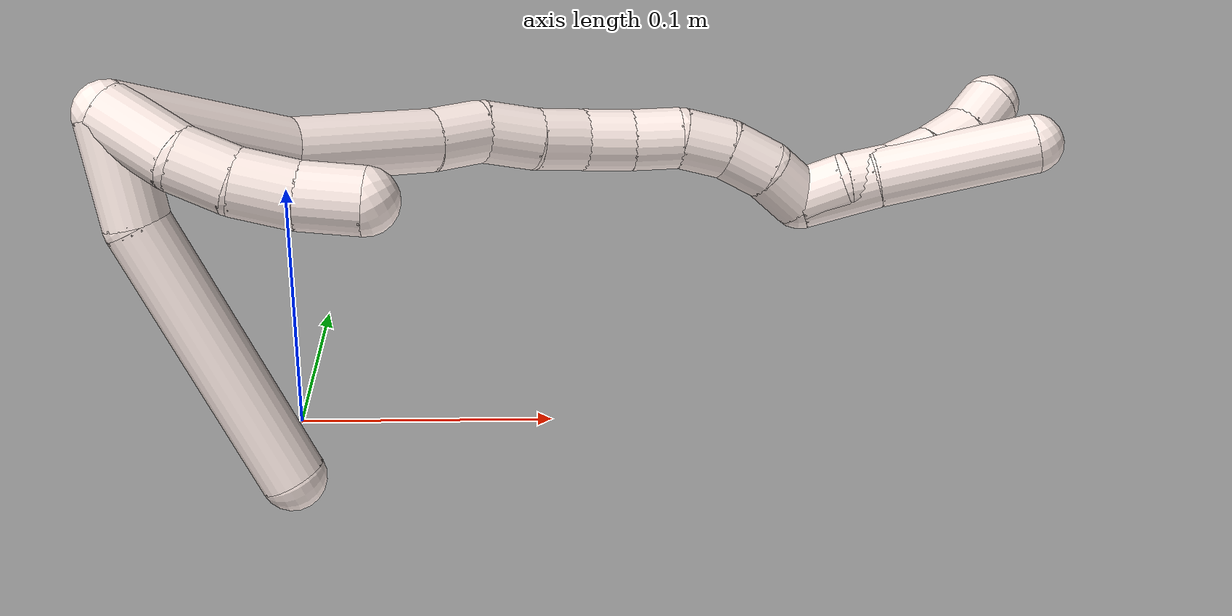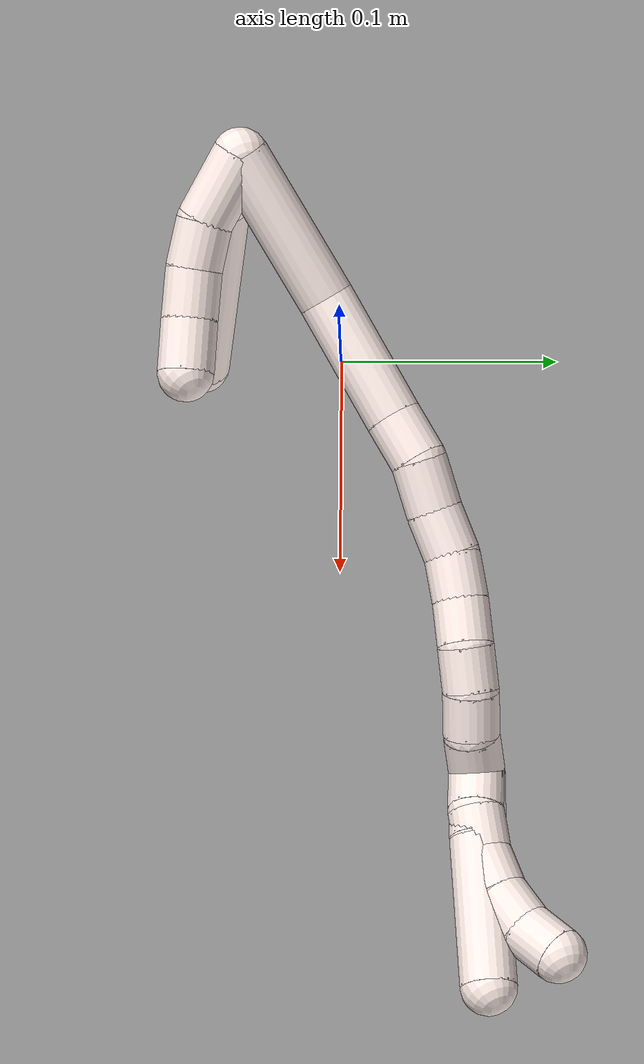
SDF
<sdf version="1.7">
 <world name="default">
  <model name="11">
   <static>0</static>
   <link name="11">
    <collision name="collision-cylinder-e_1_2_8">
     <pose>0.017763 -0.007959 -0.005331 2.16099 1.07618 1.68223</pose>
     <geometry><cylinder><radius>0.0125</radius><length>0.040364</length></cylinder></geometry>
     <surface>
      <friction><ode><mu>1.16</mu><mu2>1.16</mu2><slip1>0</slip1><slip2>0</slip2></ode></friction>
      <contact><ode><kp>1e+06</kp><kd>1</kd><max_vel>0</max_vel><min_depth>0.001</min_depth></ode></contact>
     </surface>
    </collision>
    <visual name="visual-cylinder-e_1_2_8">
     <pose>0.017763 -0.007959 -0.005331 2.16099 1.07618 1.68223</pose>
     <geometry><cylinder><radius>0.0125</radius><length>0.040364</length></cylinder></geometry>
     <material><ambient>1 0.933333 0.909804 1</ambient></material>
    </visual>
    <collision name="collision-cylinder-e_2_8_6">
     <pose>0.085655 -0.038087 -0.009805 1.53211 1.15416 1.11906</pose>
     <geometry><cylinder><radius>0.0125</radius><length>0.109636</length></cylinder></geometry>
     <surface>
      <friction><ode><mu>1.16</mu><mu2>1.16</mu2><slip1>0</slip1><slip2>0</slip2></ode></friction>
      <contact><ode><kp>1e+06</kp><kd>1</kd><max_vel>0</max_vel><min_depth>0.001</min_depth></ode></contact>
     </surface>
    </collision>
    <visual name="visual-cylinder-e_2_8_6">
     <pose>0.085655 -0.038087 -0.009805 1.53211 1.15416 1.11906</pose>
     <geometry><cylinder><radius>0.0125</radius><length>0.109636</length></cylinder></geometry>
     <material><ambient>1 0.933333 0.909804 1</ambient></material>
    </visual>
    <collision name="collision-cylinder-e_1_2_9">
     <pose>0.006811 -0.013523 0.00611 1.1464 0.430279 0.28026</pose>
     <geometry><cylinder><radius>0.0125</radius><length>0.032655</length></cylinder></geometry>
     <surface>
      <friction><ode><mu>1.16</mu><mu2>1.16</mu2><slip1>0</slip1><slip2>0</slip2></ode></friction>
      <contact><ode><kp>1e+06</kp><kd>1</kd><max_vel>0</max_vel><min_depth>0.001</min_depth></ode></contact>
     </surface>
    </collision>
    <visual name="visual-cylinder-e_1_2_9">
     <pose>0.006811 -0.013523 0.00611 1.1464 0.430279 0.28026</pose>
     <geometry><cylinder><radius>0.0125</radius><length>0.032655</length></cylinder></geometry>
     <material><ambient>1 0.933333 0.909804 1</ambient></material>
    </visual>
    <collision name="collision-cylinder-e_2_9_10">
     <pose>0.019041 -0.033922 0.018323 0.845014 0.532701 0.244103</pose>
     <geometry><cylinder><radius>0.0125</radius><length>0.021345</length></cylinder></geometry>
     <surface>
      <friction><ode><mu>1.16</mu><mu2>1.16</mu2><slip1>0</slip1><slip2>0</slip2></ode></friction>
      <contact><ode><kp>1e+06</kp><kd>1</kd><max_vel>0</max_vel><min_depth>0.001</min_depth></ode></contact>
     </surface>
    </collision>
    <visual name="visual-cylinder-e_2_9_10">
     <pose>0.019041 -0.033922 0.018323 0.845014 0.532701 0.244103</pose>
     <geometry><cylinder><radius>0.0125</radius><length>0.021345</length></cylinder></geometry>
     <material><ambient>1 0.933333 0.909804 1</ambient></material>
    </visual>
    <collision name="collision-cylinder-e_3_10_11">
     <pose>0.029522 -0.046827 0.03241 0.646667 0.468228 0.159492</pose>
     <geometry><cylinder><radius>0.0125</radius><length>0.022425</length></cylinder></geometry>
     <surface>
      <friction><ode><mu>1.16</mu><mu2>1.16</mu2><slip1>0</slip1><slip2>0</slip2></ode></friction>
      <contact><ode><kp>1e+06</kp><kd>1</kd><max_vel>0</max_vel><min_depth>0.001</min_depth></ode></contact>
     </surface>
    </collision>
    <visual name="visual-cylinder-e_3_10_11">
     <pose>0.029522 -0.046827 0.03241 0.646667 0.468228 0.159492</pose>
     <geometry><cylinder><radius>0.0125</radius><length>0.022425</length></cylinder></geometry>
     <material><ambient>1 0.933333 0.909804 1</ambient></material>
    </visual>
    <collision name="collision-cylinder-e_4_11_5">
     <pose>0.038595 -0.058862 0.049711 0.572611 0.347372 0.103213</pose>
     <geometry><cylinder><radius>0.0125</radius><length>0.023576</length></cylinder></geometry>
     <surface>
      <friction><ode><mu>1.16</mu><mu2>1.16</mu2><slip1>0</slip1><slip2>0</slip2></ode></friction>
      <contact><ode><kp>1e+06</kp><kd>1</kd><max_vel>0</max_vel><min_depth>0.001</min_depth></ode></contact>
     </surface>
    </collision>
    <visual name="visual-cylinder-e_4_11_5">
     <pose>0.038595 -0.058862 0.049711 0.572611 0.347372 0.103213</pose>
     <geometry><cylinder><radius>0.0125</radius><length>0.023576</length></cylinder></geometry>
     <material><ambient>1 0.933333 0.909804 1</ambient></material>
    </visual>
    <collision name="collision-cylinder-e_1_2_12">
     <pose>0.025959 0.002213 0.025703 -0.085897 0.788501 -0.035754</pose>
     <geometry><cylinder><radius>0.0125</radius><length>0.073197</length></cylinder></geometry>
     <surface>
      <friction><ode><mu>1.16</mu><mu2>1.16</mu2><slip1>0</slip1><slip2>0</slip2></ode></friction>
      <contact><ode><kp>1e+06</kp><kd>1</kd><max_vel>0</max_vel><min_depth>0.001</min_depth></ode></contact>
     </surface>
    </collision>
    <visual name="visual-cylinder-e_1_2_12">
     <pose>0.025959 0.002213 0.025703 -0.085897 0.788501 -0.035754</pose>
     <geometry><cylinder><radius>0.0125</radius><length>0.073197</length></cylinder></geometry>
     <material><ambient>1 0.933333 0.909804 1</ambient></material>
    </visual>
    <collision name="collision-cylinder-e_2_12_13">
     <pose>0.066793 0.005564 0.07754 -0.043499 0.51705 -0.011505</pose>
     <geometry><cylinder><radius>0.0125</radius><length>0.060183</length></cylinder></geometry>
     <surface>
      <friction><ode><mu>1.16</mu><mu2>1.16</mu2><slip1>0</slip1><slip2>0</slip2></ode></friction>
      <contact><ode><kp>1e+06</kp><kd>1</kd><max_vel>0</max_vel><min_depth>0.001</min_depth></ode></contact>
     </surface>
    </collision>
    <visual name="visual-cylinder-e_2_12_13">
     <pose>0.066793 0.005564 0.07754 -0.043499 0.51705 -0.011505</pose>
     <geometry><cylinder><radius>0.0125</radius><length>0.060183</length></cylinder></geometry>
     <material><ambient>1 0.933333 0.909804 1</ambient></material>
    </visual>
    <collision name="collision-cylinder-e_3_13_14">
     <pose>0.086079 0.007284 0.113744 -0.057731 0.412284 -0.012076</pose>
     <geometry><cylinder><radius>0.0125</radius><length>0.022019</length></cylinder></geometry>
     <surface>
      <friction><ode><mu>1.16</mu><mu2>1.16</mu2><slip1>0</slip1><slip2>0</slip2></ode></friction>
      <contact><ode><kp>1e+06</kp><kd>1</kd><max_vel>0</max_vel><min_depth>0.001</min_depth></ode></contact>
     </surface>
    </collision>
    <visual name="visual-cylinder-e_3_13_14">
     <pose>0.086079 0.007284 0.113744 -0.057731 0.412284 -0.012076</pose>
     <geometry><cylinder><radius>0.0125</radius><length>0.022019</length></cylinder></geometry>
     <material><ambient>1 0.933333 0.909804 1</ambient></material>
    </visual>
    <collision name="collision-cylinder-e_4_14_15">
     <pose>0.097283 0.00578 0.132992 0.223474 0.625129 0.072488</pose>
     <geometry><cylinder><radius>0.0125</radius><length>0.023213</length></cylinder></geometry>
     <surface>
      <friction><ode><mu>1.16</mu><mu2>1.16</mu2><slip1>0</slip1><slip2>0</slip2></ode></friction>
      <contact><ode><kp>1e+06</kp><kd>1</kd><max_vel>0</max_vel><min_depth>0.001</min_depth></ode></contact>
     </surface>
    </collision>
    <visual name="visual-cylinder-e_4_14_15">
     <pose>0.097283 0.00578 0.132992 0.223474 0.625129 0.072488</pose>
     <geometry><cylinder><radius>0.0125</radius><length>0.023213</length></cylinder></geometry>
     <material><ambient>1 0.933333 0.909804 1</ambient></material>
    </visual>
    <collision name="collision-cylinder-e_5_15_16">
     <pose>0.109376 0.002708 0.151044 0.110599 0.535711 0.030383</pose>
     <geometry><cylinder><radius>0.0125</radius><length>0.020767</length></cylinder></geometry>
     <surface>
      <friction><ode><mu>1.16</mu><mu2>1.16</mu2><slip1>0</slip1><slip2>0</slip2></ode></friction>
      <contact><ode><kp>1e+06</kp><kd>1</kd><max_vel>0</max_vel><min_depth>0.001</min_depth></ode></contact>
     </surface>
    </collision>
    <visual name="visual-cylinder-e_5_15_16">
     <pose>0.109376 0.002708 0.151044 0.110599 0.535711 0.030383</pose>
     <geometry><cylinder><radius>0.0125</radius><length>0.020767</length></cylinder></geometry>
     <material><ambient>1 0.933333 0.909804 1</ambient></material>
    </visual>
    <collision name="collision-cylinder-e_6_16_17">
     <pose>0.118849 -0.001254 0.168778 0.324099 0.419936 0.069651</pose>
     <geometry><cylinder><radius>0.0125</radius><length>0.020472</length></cylinder></geometry>
     <surface>
      <friction><ode><mu>1.16</mu><mu2>1.16</mu2><slip1>0</slip1><slip2>0</slip2></ode></friction>
      <contact><ode><kp>1e+06</kp><kd>1</kd><max_vel>0</max_vel><min_depth>0.001</min_depth></ode></contact>
     </surface>
    </collision>
    <visual name="visual-cylinder-e_6_16_17">
     <pose>0.118849 -0.001254 0.168778 0.324099 0.419936 0.069651</pose>
     <geometry><cylinder><radius>0.0125</radius><length>0.020472</length></cylinder></geometry>
     <material><ambient>1 0.933333 0.909804 1</ambient></material>
    </visual>
    <collision name="collision-cylinder-e_7_17_18">
     <pose>0.126215 -0.007721 0.18645 0.377208 0.324824 0.062531</pose>
     <geometry><cylinder><radius>0.0125</radius><length>0.020002</length></cylinder></geometry>
     <surface>
      <friction><ode><mu>1.16</mu><mu2>1.16</mu2><slip1>0</slip1><slip2>0</slip2></ode></friction>
      <contact><ode><kp>1e+06</kp><kd>1</kd><max_vel>0</max_vel><min_depth>0.001</min_depth></ode></contact>
     </surface>
    </collision>
    <visual name="visual-cylinder-e_7_17_18">
     <pose>0.126215 -0.007721 0.18645 0.377208 0.324824 0.062531</pose>
     <geometry><cylinder><radius>0.0125</radius><length>0.020002</length></cylinder></geometry>
     <material><ambient>1 0.933333 0.909804 1</ambient></material>
    </visual>
    <collision name="collision-cylinder-e_8_18_19">
     <pose>0.13515 -0.014782 0.202702 0.447422 0.608057 0.142529</pose>
     <geometry><cylinder><radius>0.0125</radius><length>0.020108</length></cylinder></geometry>
     <surface>
      <friction><ode><mu>1.16</mu><mu2>1.16</mu2><slip1>0</slip1><slip2>0</slip2></ode></friction>
      <contact><ode><kp>1e+06</kp><kd>1</kd><max_vel>0</max_vel><min_depth>0.001</min_depth></ode></contact>
     </surface>
    </collision>
    <visual name="visual-cylinder-e_8_18_19">
     <pose>0.13515 -0.014782 0.202702 0.447422 0.608057 0.142529</pose>
     <geometry><cylinder><radius>0.0125</radius><length>0.020108</length></cylinder></geometry>
     <material><ambient>1 0.933333 0.909804 1</ambient></material>
    </visual>
    <collision name="collision-cylinder-e_9_19_20">
     <pose>0.148032 -0.022591 0.215727 0.649178 0.794352 0.280442</pose>
     <geometry><cylinder><radius>0.0125</radius><length>0.020013</length></cylinder></geometry>
     <surface>
      <friction><ode><mu>1.16</mu><mu2>1.16</mu2><slip1>0</slip1><slip2>0</slip2></ode></friction>
      <contact><ode><kp>1e+06</kp><kd>1</kd><max_vel>0</max_vel><min_depth>0.001</min_depth></ode></contact>
     </surface>
    </collision>
    <visual name="visual-cylinder-e_9_19_20">
     <pose>0.148032 -0.022591 0.215727 0.649178 0.794352 0.280442</pose>
     <geometry><cylinder><radius>0.0125</radius><length>0.020013</length></cylinder></geometry>
     <material><ambient>1 0.933333 0.909804 1</ambient></material>
    </visual>
    <collision name="collision-cylinder-e_10_20_1">
     <pose>0.163994 -0.029601 0.22515 0.625223 1.0784 0.382062</pose>
     <geometry><cylinder><radius>0.0125</radius><length>0.020025</length></cylinder></geometry>
     <surface>
      <friction><ode><mu>1.16</mu><mu2>1.16</mu2><slip1>0</slip1><slip2>0</slip2></ode></friction>
      <contact><ode><kp>1e+06</kp><kd>1</kd><max_vel>0</max_vel><min_depth>0.001</min_depth></ode></contact>
     </surface>
    </collision>
    <visual name="visual-cylinder-e_10_20_1">
     <pose>0.163994 -0.029601 0.22515 0.625223 1.0784 0.382062</pose>
     <geometry><cylinder><radius>0.0125</radius><length>0.020025</length></cylinder></geometry>
     <material><ambient>1 0.933333 0.909804 1</ambient></material>
    </visual>
    <collision name="collision-cylinder-e_1_1_21">
     <pose>0.173284 -0.038854 0.243972 0.408366 0.028577 0.005918</pose>
     <geometry><cylinder><radius>0.0125</radius><length>0.032666</length></cylinder></geometry>
     <surface>
      <friction><ode><mu>1.16</mu><mu2>1.16</mu2><slip1>0</slip1><slip2>0</slip2></ode></friction>
      <contact><ode><kp>1e+06</kp><kd>1</kd><max_vel>0</max_vel><min_depth>0.001</min_depth></ode></contact>
     </surface>
    </collision>
    <visual name="visual-cylinder-e_1_1_21">
     <pose>0.173284 -0.038854 0.243972 0.408366 0.028577 0.005918</pose>
     <geometry><cylinder><radius>0.0125</radius><length>0.032666</length></cylinder></geometry>
     <material><ambient>1 0.933333 0.909804 1</ambient></material>
    </visual>
    <collision name="collision-cylinder-e_2_21_4">
     <pose>0.177883 -0.057578 0.290045 0.375068 0.123055 0.02338</pose>
     <geometry><cylinder><radius>0.0125</radius><length>0.067334</length></cylinder></geometry>
     <surface>
      <friction><ode><mu>1.16</mu><mu2>1.16</mu2><slip1>0</slip1><slip2>0</slip2></ode></friction>
      <contact><ode><kp>1e+06</kp><kd>1</kd><max_vel>0</max_vel><min_depth>0.001</min_depth></ode></contact>
     </surface>
    </collision>
    <visual name="visual-cylinder-e_2_21_4">
     <pose>0.177883 -0.057578 0.290045 0.375068 0.123055 0.02338</pose>
     <geometry><cylinder><radius>0.0125</radius><length>0.067334</length></cylinder></geometry>
     <material><ambient>1 0.933333 0.909804 1</ambient></material>
    </visual>
    <collision name="collision-cylinder-e_1_1_22">
     <pose>0.172088 -0.036429 0.238099 0.419016 -0.073003 -0.015529</pose>
     <geometry><cylinder><radius>0.0125</radius><length>0.02</length></cylinder></geometry>
     <surface>
      <friction><ode><mu>1.16</mu><mu2>1.16</mu2><slip1>0</slip1><slip2>0</slip2></ode></friction>
      <contact><ode><kp>1e+06</kp><kd>1</kd><max_vel>0</max_vel><min_depth>0.001</min_depth></ode></contact>
     </surface>
    </collision>
    <visual name="visual-cylinder-e_1_1_22">
     <pose>0.172088 -0.036429 0.238099 0.419016 -0.073003 -0.015529</pose>
     <geometry><cylinder><radius>0.0125</radius><length>0.02</length></cylinder></geometry>
     <material><ambient>1 0.933333 0.909804 1</ambient></material>
    </visual>
    <collision name="collision-cylinder-e_2_22_23">
     <pose>0.173294 -0.043293 0.25661 0.290162 0.194861 0.028559</pose>
     <geometry><cylinder><radius>0.0125</radius><length>0.02</length></cylinder></geometry>
     <surface>
      <friction><ode><mu>1.16</mu><mu2>1.16</mu2><slip1>0</slip1><slip2>0</slip2></ode></friction>
      <contact><ode><kp>1e+06</kp><kd>1</kd><max_vel>0</max_vel><min_depth>0.001</min_depth></ode></contact>
     </surface>
    </collision>
    <visual name="visual-cylinder-e_2_22_23">
     <pose>0.173294 -0.043293 0.25661 0.290162 0.194861 0.028559</pose>
     <geometry><cylinder><radius>0.0125</radius><length>0.02</length></cylinder></geometry>
     <material><ambient>1 0.933333 0.909804 1</ambient></material>
    </visual>
    <collision name="collision-cylinder-e_3_23_24">
     <pose>0.176291 -0.046821 0.275928 0.072569 0.10624 0.00386</pose>
     <geometry><cylinder><radius>0.0125</radius><length>0.02</length></cylinder></geometry>
     <surface>
      <friction><ode><mu>1.16</mu><mu2>1.16</mu2><slip1>0</slip1><slip2>0</slip2></ode></friction>
      <contact><ode><kp>1e+06</kp><kd>1</kd><max_vel>0</max_vel><min_depth>0.001</min_depth></ode></contact>
     </surface>
    </collision>
    <visual name="visual-cylinder-e_3_23_24">
     <pose>0.176291 -0.046821 0.275928 0.072569 0.10624 0.00386</pose>
     <geometry><cylinder><radius>0.0125</radius><length>0.02</length></cylinder></geometry>
     <material><ambient>1 0.933333 0.909804 1</ambient></material>
    </visual>
    <collision name="collision-cylinder-e_4_24_25">
     <pose>0.178592 -0.04594 0.295638 -0.162173 0.124388 -0.010121</pose>
     <geometry><cylinder><radius>0.0125</radius><length>0.02</length></cylinder></geometry>
     <surface>
      <friction><ode><mu>1.16</mu><mu2>1.16</mu2><slip1>0</slip1><slip2>0</slip2></ode></friction>
      <contact><ode><kp>1e+06</kp><kd>1</kd><max_vel>0</max_vel><min_depth>0.001</min_depth></ode></contact>
     </surface>
    </collision>
    <visual name="visual-cylinder-e_4_24_25">
     <pose>0.178592 -0.04594 0.295638 -0.162173 0.124388 -0.010121</pose>
     <geometry><cylinder><radius>0.0125</radius><length>0.02</length></cylinder></geometry>
     <material><ambient>1 0.933333 0.909804 1</ambient></material>
    </visual>
    <collision name="collision-cylinder-e_5_25_3">
     <pose>0.179592 -0.040513 0.314667 -0.392631 -0.024058 0.004785</pose>
     <geometry><cylinder><radius>0.0125</radius><length>0.02</length></cylinder></geometry>
     <surface>
      <friction><ode><mu>1.16</mu><mu2>1.16</mu2><slip1>0</slip1><slip2>0</slip2></ode></friction>
      <contact><ode><kp>1e+06</kp><kd>1</kd><max_vel>0</max_vel><min_depth>0.001</min_depth></ode></contact>
     </surface>
    </collision>
    <visual name="visual-cylinder-e_5_25_3">
     <pose>0.179592 -0.040513 0.314667 -0.392631 -0.024058 0.004785</pose>
     <geometry><cylinder><radius>0.0125</radius><length>0.02</length></cylinder></geometry>
     <material><ambient>1 0.933333 0.909804 1</ambient></material>
    </visual>
    <collision name="collision-sphere-3">
     <pose>0.179352 -0.036688 0.323903 0 -0 0</pose>
     <geometry><sphere><radius>0.0125</radius></sphere></geometry>
     <surface>
      <friction><ode><mu>1.16</mu><mu2>1.16</mu2><slip1>0</slip1><slip2>0</slip2></ode></friction>
      <contact><ode><kp>1e+06</kp><kd>1</kd><max_vel>0</max_vel><min_depth>0.001</min_depth></ode></contact>
     </surface>
    </collision>
    <visual name="visual-sphere-3">
     <pose>0.179352 -0.036688 0.323903 0 -0 0</pose>
     <geometry><sphere><radius>0.0125</radius></sphere></geometry>
     <material><ambient>1 0.933333 0.909804 1</ambient></material>
    </visual>
    <collision name="collision-sphere-25">
     <pose>0.179833 -0.044338 0.305431 0 -0 0</pose>
     <geometry><sphere><radius>0.0125</radius></sphere></geometry>
     <surface>
      <friction><ode><mu>1.16</mu><mu2>1.16</mu2><slip1>0</slip1><slip2>0</slip2></ode></friction>
      <contact><ode><kp>1e+06</kp><kd>1</kd><max_vel>0</max_vel><min_depth>0.001</min_depth></ode></contact>
     </surface>
    </collision>
    <visual name="visual-sphere-25">
     <pose>0.179833 -0.044338 0.305431 0 -0 0</pose>
     <geometry><sphere><radius>0.0125</radius></sphere></geometry>
     <material><ambient>1 0.933333 0.909804 1</ambient></material>
    </visual>
    <collision name="collision-sphere-24">
     <pose>0.177352 -0.047542 0.285846 0 -0 0</pose>
     <geometry><sphere><radius>0.0125</radius></sphere></geometry>
     <surface>
      <friction><ode><mu>1.16</mu><mu2>1.16</mu2><slip1>0</slip1><slip2>0</slip2></ode></friction>
      <contact><ode><kp>1e+06</kp><kd>1</kd><max_vel>0</max_vel><min_depth>0.001</min_depth></ode></contact>
     </surface>
    </collision>
    <visual name="visual-sphere-24">
     <pose>0.177352 -0.047542 0.285846 0 -0 0</pose>
     <geometry><sphere><radius>0.0125</radius></sphere></geometry>
     <material><ambient>1 0.933333 0.909804 1</ambient></material>
    </visual>
    <collision name="collision-sphere-23">
     <pose>0.175231 -0.0461 0.266011 0 -0 0</pose>
     <geometry><sphere><radius>0.0125</radius></sphere></geometry>
     <surface>
      <friction><ode><mu>1.16</mu><mu2>1.16</mu2><slip1>0</slip1><slip2>0</slip2></ode></friction>
      <contact><ode><kp>1e+06</kp><kd>1</kd><max_vel>0</max_vel><min_depth>0.001</min_depth></ode></contact>
     </surface>
    </collision>
    <visual name="visual-sphere-23">
     <pose>0.175231 -0.0461 0.266011 0 -0 0</pose>
     <geometry><sphere><radius>0.0125</radius></sphere></geometry>
     <material><ambient>1 0.933333 0.909804 1</ambient></material>
    </visual>
    <collision name="collision-sphere-22">
     <pose>0.171358 -0.040487 0.247209 0 -0 0</pose>
     <geometry><sphere><radius>0.0125</radius></sphere></geometry>
     <surface>
      <friction><ode><mu>1.16</mu><mu2>1.16</mu2><slip1>0</slip1><slip2>0</slip2></ode></friction>
      <contact><ode><kp>1e+06</kp><kd>1</kd><max_vel>0</max_vel><min_depth>0.001</min_depth></ode></contact>
     </surface>
    </collision>
    <visual name="visual-sphere-22">
     <pose>0.171358 -0.040487 0.247209 0 -0 0</pose>
     <geometry><sphere><radius>0.0125</radius></sphere></geometry>
     <material><ambient>1 0.933333 0.909804 1</ambient></material>
    </visual>
    <collision name="collision-sphere-4">
     <pose>0.182015 -0.069818 0.321135 0 -0 0</pose>
     <geometry><sphere><radius>0.0125</radius></sphere></geometry>
     <surface>
      <friction><ode><mu>1.16</mu><mu2>1.16</mu2><slip1>0</slip1><slip2>0</slip2></ode></friction>
      <contact><ode><kp>1e+06</kp><kd>1</kd><max_vel>0</max_vel><min_depth>0.001</min_depth></ode></contact>
     </surface>
    </collision>
    <visual name="visual-sphere-4">
     <pose>0.182015 -0.069818 0.321135 0 -0 0</pose>
     <geometry><sphere><radius>0.0125</radius></sphere></geometry>
     <material><ambient>1 0.933333 0.909804 1</ambient></material>
    </visual>
    <collision name="collision-sphere-21">
     <pose>0.17375 -0.045337 0.258955 0 -0 0</pose>
     <geometry><sphere><radius>0.0125</radius></sphere></geometry>
     <surface>
      <friction><ode><mu>1.16</mu><mu2>1.16</mu2><slip1>0</slip1><slip2>0</slip2></ode></friction>
      <contact><ode><kp>1e+06</kp><kd>1</kd><max_vel>0</max_vel><min_depth>0.001</min_depth></ode></contact>
     </surface>
    </collision>
    <visual name="visual-sphere-21">
     <pose>0.17375 -0.045337 0.258955 0 -0 0</pose>
     <geometry><sphere><radius>0.0125</radius></sphere></geometry>
     <material><ambient>1 0.933333 0.909804 1</ambient></material>
    </visual>
    <collision name="collision-sphere-1">
     <pose>0.172817 -0.032371 0.228988 0 -0 0</pose>
     <geometry><sphere><radius>0.0125</radius></sphere></geometry>
     <surface>
      <friction><ode><mu>1.16</mu><mu2>1.16</mu2><slip1>0</slip1><slip2>0</slip2></ode></friction>
      <contact><ode><kp>1e+06</kp><kd>1</kd><max_vel>0</max_vel><min_depth>0.001</min_depth></ode></contact>
     </surface>
    </collision>
    <visual name="visual-sphere-1">
     <pose>0.172817 -0.032371 0.228988 0 -0 0</pose>
     <geometry><sphere><radius>0.0125</radius></sphere></geometry>
     <material><ambient>1 0.933333 0.909804 1</ambient></material>
    </visual>
    <collision name="collision-sphere-11">
     <pose>0.034582 -0.052856 0.040395 0 -0 0</pose>
     <geometry><sphere><radius>0.0125</radius></sphere></geometry>
     <surface>
      <friction><ode><mu>1.16</mu><mu2>1.16</mu2><slip1>0</slip1><slip2>0</slip2></ode></friction>
      <contact><ode><kp>1e+06</kp><kd>1</kd><max_vel>0</max_vel><min_depth>0.001</min_depth></ode></contact>
     </surface>
    </collision>
    <visual name="visual-sphere-11">
     <pose>0.034582 -0.052856 0.040395 0 -0 0</pose>
     <geometry><sphere><radius>0.0125</radius></sphere></geometry>
     <material><ambient>1 0.933333 0.909804 1</ambient></material>
    </visual>
    <collision name="collision-sphere-10">
     <pose>0.024461 -0.040799 0.024425 0 -0 0</pose>
     <geometry><sphere><radius>0.0125</radius></sphere></geometry>
     <surface>
      <friction><ode><mu>1.16</mu><mu2>1.16</mu2><slip1>0</slip1><slip2>0</slip2></ode></friction>
      <contact><ode><kp>1e+06</kp><kd>1</kd><max_vel>0</max_vel><min_depth>0.001</min_depth></ode></contact>
     </surface>
    </collision>
    <visual name="visual-sphere-10">
     <pose>0.024461 -0.040799 0.024425 0 -0 0</pose>
     <geometry><sphere><radius>0.0125</radius></sphere></geometry>
     <material><ambient>1 0.933333 0.909804 1</ambient></material>
    </visual>
    <collision name="collision-sphere-6">
     <pose>0.135784 -0.060254 -0.008947 0 -0 0</pose>
     <geometry><sphere><radius>0.0125</radius></sphere></geometry>
     <surface>
      <friction><ode><mu>1.16</mu><mu2>1.16</mu2><slip1>0</slip1><slip2>0</slip2></ode></friction>
      <contact><ode><kp>1e+06</kp><kd>1</kd><max_vel>0</max_vel><min_depth>0.001</min_depth></ode></contact>
     </surface>
    </collision>
    <visual name="visual-sphere-6">
     <pose>0.135784 -0.060254 -0.008947 0 -0 0</pose>
     <geometry><sphere><radius>0.0125</radius></sphere></geometry>
     <material><ambient>1 0.933333 0.909804 1</ambient></material>
    </visual>
    <collision name="collision-sphere-9">
     <pose>0.013621 -0.027045 0.01222 0 -0 0</pose>
     <geometry><sphere><radius>0.0125</radius></sphere></geometry>
     <surface>
      <friction><ode><mu>1.16</mu><mu2>1.16</mu2><slip1>0</slip1><slip2>0</slip2></ode></friction>
      <contact><ode><kp>1e+06</kp><kd>1</kd><max_vel>0</max_vel><min_depth>0.001</min_depth></ode></contact>
     </surface>
    </collision>
    <visual name="visual-sphere-9">
     <pose>0.013621 -0.027045 0.01222 0 -0 0</pose>
     <geometry><sphere><radius>0.0125</radius></sphere></geometry>
     <material><ambient>1 0.933333 0.909804 1</ambient></material>
    </visual>
    <collision name="collision-sphere-2">
     <geometry><sphere><radius>0.0125</radius></sphere></geometry>
     <surface>
      <friction><ode><mu>1.16</mu><mu2>1.16</mu2><slip1>0</slip1><slip2>0</slip2></ode></friction>
      <contact><ode><kp>1e+06</kp><kd>1</kd><max_vel>0</max_vel><min_depth>0.001</min_depth></ode></contact>
     </surface>
    </collision>
    <visual name="visual-sphere-2">
     <geometry><sphere><radius>0.0125</radius></sphere></geometry>
     <material><ambient>1 0.933333 0.909804 1</ambient></material>
    </visual>
    <collision name="collision-sphere-19">
     <pose>0.140893 -0.018352 0.210141 0 -0 0</pose>
     <geometry><sphere><radius>0.0125</radius></sphere></geometry>
     <surface>
      <friction><ode><mu>1.16</mu><mu2>1.16</mu2><slip1>0</slip1><slip2>0</slip2></ode></friction>
      <contact><ode><kp>1e+06</kp><kd>1</kd><max_vel>0</max_vel><min_depth>0.001</min_depth></ode></contact>
     </surface>
    </collision>
    <visual name="visual-sphere-19">
     <pose>0.140893 -0.018352 0.210141 0 -0 0</pose>
     <geometry><sphere><radius>0.0125</radius></sphere></geometry>
     <material><ambient>1 0.933333 0.909804 1</ambient></material>
    </visual>
    <collision name="collision-sphere-8">
     <pose>0.035526 -0.015919 -0.010663 0 -0 0</pose>
     <geometry><sphere><radius>0.0125</radius></sphere></geometry>
     <surface>
      <friction><ode><mu>1.16</mu><mu2>1.16</mu2><slip1>0</slip1><slip2>0</slip2></ode></friction>
      <contact><ode><kp>1e+06</kp><kd>1</kd><max_vel>0</max_vel><min_depth>0.001</min_depth></ode></contact>
     </surface>
    </collision>
    <visual name="visual-sphere-8">
     <pose>0.035526 -0.015919 -0.010663 0 -0 0</pose>
     <geometry><sphere><radius>0.0125</radius></sphere></geometry>
     <material><ambient>1 0.933333 0.909804 1</ambient></material>
    </visual>
    <collision name="collision-sphere-5">
     <pose>0.042608 -0.064867 0.059027 0 -0 0</pose>
     <geometry><sphere><radius>0.0125</radius></sphere></geometry>
     <surface>
      <friction><ode><mu>1.16</mu><mu2>1.16</mu2><slip1>0</slip1><slip2>0</slip2></ode></friction>
      <contact><ode><kp>1e+06</kp><kd>1</kd><max_vel>0</max_vel><min_depth>0.001</min_depth></ode></contact>
     </surface>
    </collision>
    <visual name="visual-sphere-5">
     <pose>0.042608 -0.064867 0.059027 0 -0 0</pose>
     <geometry><sphere><radius>0.0125</radius></sphere></geometry>
     <material><ambient>1 0.933333 0.909804 1</ambient></material>
    </visual>
    <collision name="collision-sphere-12">
     <pose>0.051918 0.004427 0.051407 0 -0 0</pose>
     <geometry><sphere><radius>0.0125</radius></sphere></geometry>
     <surface>
      <friction><ode><mu>1.16</mu><mu2>1.16</mu2><slip1>0</slip1><slip2>0</slip2></ode></friction>
      <contact><ode><kp>1e+06</kp><kd>1</kd><max_vel>0</max_vel><min_depth>0.001</min_depth></ode></contact>
     </surface>
    </collision>
    <visual name="visual-sphere-12">
     <pose>0.051918 0.004427 0.051407 0 -0 0</pose>
     <geometry><sphere><radius>0.0125</radius></sphere></geometry>
     <material><ambient>1 0.933333 0.909804 1</ambient></material>
    </visual>
    <collision name="collision-sphere-13">
     <pose>0.081668 0.006702 0.103674 0 -0 0</pose>
     <geometry><sphere><radius>0.0125</radius></sphere></geometry>
     <surface>
      <friction><ode><mu>1.16</mu><mu2>1.16</mu2><slip1>0</slip1><slip2>0</slip2></ode></friction>
      <contact><ode><kp>1e+06</kp><kd>1</kd><max_vel>0</max_vel><min_depth>0.001</min_depth></ode></contact>
     </surface>
    </collision>
    <visual name="visual-sphere-13">
     <pose>0.081668 0.006702 0.103674 0 -0 0</pose>
     <geometry><sphere><radius>0.0125</radius></sphere></geometry>
     <material><ambient>1 0.933333 0.909804 1</ambient></material>
    </visual>
    <collision name="collision-sphere-14">
     <pose>0.090491 0.007866 0.123814 0 -0 0</pose>
     <geometry><sphere><radius>0.0125</radius></sphere></geometry>
     <surface>
      <friction><ode><mu>1.16</mu><mu2>1.16</mu2><slip1>0</slip1><slip2>0</slip2></ode></friction>
      <contact><ode><kp>1e+06</kp><kd>1</kd><max_vel>0</max_vel><min_depth>0.001</min_depth></ode></contact>
     </surface>
    </collision>
    <visual name="visual-sphere-14">
     <pose>0.090491 0.007866 0.123814 0 -0 0</pose>
     <geometry><sphere><radius>0.0125</radius></sphere></geometry>
     <material><ambient>1 0.933333 0.909804 1</ambient></material>
    </visual>
    <collision name="collision-sphere-15">
     <pose>0.104075 0.003694 0.142169 0 -0 0</pose>
     <geometry><sphere><radius>0.0125</radius></sphere></geometry>
     <surface>
      <friction><ode><mu>1.16</mu><mu2>1.16</mu2><slip1>0</slip1><slip2>0</slip2></ode></friction>
      <contact><ode><kp>1e+06</kp><kd>1</kd><max_vel>0</max_vel><min_depth>0.001</min_depth></ode></contact>
     </surface>
    </collision>
    <visual name="visual-sphere-15">
     <pose>0.104075 0.003694 0.142169 0 -0 0</pose>
     <geometry><sphere><radius>0.0125</radius></sphere></geometry>
     <material><ambient>1 0.933333 0.909804 1</ambient></material>
    </visual>
    <collision name="collision-sphere-16">
     <pose>0.114676 0.001723 0.159918 0 -0 0</pose>
     <geometry><sphere><radius>0.0125</radius></sphere></geometry>
     <surface>
      <friction><ode><mu>1.16</mu><mu2>1.16</mu2><slip1>0</slip1><slip2>0</slip2></ode></friction>
      <contact><ode><kp>1e+06</kp><kd>1</kd><max_vel>0</max_vel><min_depth>0.001</min_depth></ode></contact>
     </surface>
    </collision>
    <visual name="visual-sphere-16">
     <pose>0.114676 0.001723 0.159918 0 -0 0</pose>
     <geometry><sphere><radius>0.0125</radius></sphere></geometry>
     <material><ambient>1 0.933333 0.909804 1</ambient></material>
    </visual>
    <collision name="collision-sphere-17">
     <pose>0.123023 -0.00423 0.177638 0 -0 0</pose>
     <geometry><sphere><radius>0.0125</radius></sphere></geometry>
     <surface>
      <friction><ode><mu>1.16</mu><mu2>1.16</mu2><slip1>0</slip1><slip2>0</slip2></ode></friction>
      <contact><ode><kp>1e+06</kp><kd>1</kd><max_vel>0</max_vel><min_depth>0.001</min_depth></ode></contact>
     </surface>
    </collision>
    <visual name="visual-sphere-17">
     <pose>0.123023 -0.00423 0.177638 0 -0 0</pose>
     <geometry><sphere><radius>0.0125</radius></sphere></geometry>
     <material><ambient>1 0.933333 0.909804 1</ambient></material>
    </visual>
    <collision name="collision-sphere-18">
     <pose>0.129406 -0.011212 0.195262 0 -0 0</pose>
     <geometry><sphere><radius>0.0125</radius></sphere></geometry>
     <surface>
      <friction><ode><mu>1.16</mu><mu2>1.16</mu2><slip1>0</slip1><slip2>0</slip2></ode></friction>
      <contact><ode><kp>1e+06</kp><kd>1</kd><max_vel>0</max_vel><min_depth>0.001</min_depth></ode></contact>
     </surface>
    </collision>
    <visual name="visual-sphere-18">
     <pose>0.129406 -0.011212 0.195262 0 -0 0</pose>
     <geometry><sphere><radius>0.0125</radius></sphere></geometry>
     <material><ambient>1 0.933333 0.909804 1</ambient></material>
    </visual>
    <collision name="collision-sphere-20">
     <pose>0.155171 -0.02683 0.221312 0 -0 0</pose>
     <geometry><sphere><radius>0.0125</radius></sphere></geometry>
     <surface>
      <friction><ode><mu>1.16</mu><mu2>1.16</mu2><slip1>0</slip1><slip2>0</slip2></ode></friction>
      <contact><ode><kp>1e+06</kp><kd>1</kd><max_vel>0</max_vel><min_depth>0.001</min_depth></ode></contact>
     </surface>
    </collision>
    <visual name="visual-sphere-20">
     <pose>0.155171 -0.02683 0.221312 0 -0 0</pose>
     <geometry><sphere><radius>0.0125</radius></sphere></geometry>
     <material><ambient>1 0.933333 0.909804 1</ambient></material>
    </visual>
    <inertial>
     <pose>0.098414 -0.024241 0.122241 0 -0 0</pose>
     <mass>0.75</mass>
     <inertia>
      <ixx>0.000196</ixx>
      <ixy>0</ixy>
      <ixz>0</ixz>
      <iyy>0.000244</iyy>
      <iyz>0</iyz>
      <izz>-5.7e-05</izz>
     </inertia>
    </inertial>
   </link>
   <pose>-0.054127 -0.042716 0.146335 0.278815 1.16975 0.728184</pose>
  </model>
 </world>
</sdf>
